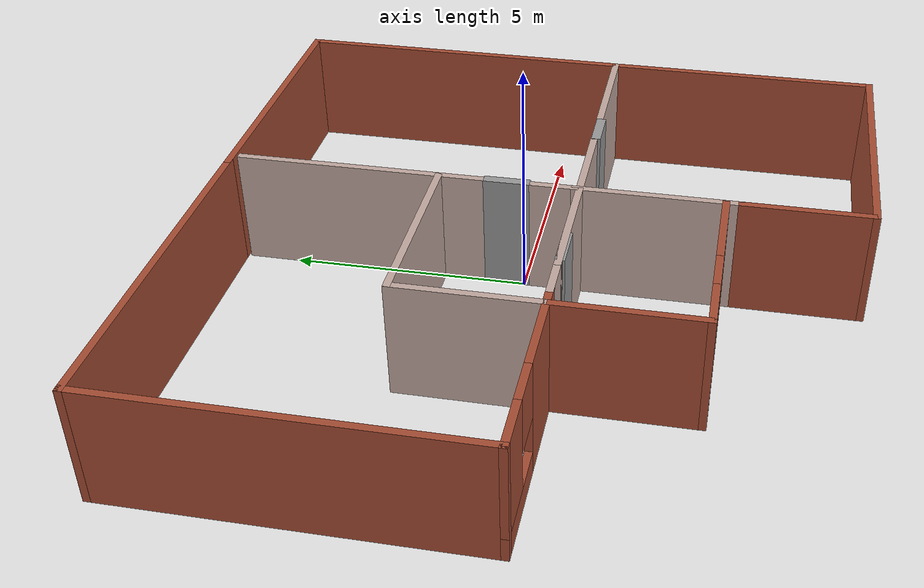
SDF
<?xml version='1.0'?>
<sdf version='1.6'>
  <model name='apt'>
    <pose frame=''>-0.93303 -0.379963 0 0 -0 0</pose>
    <link name='Door_1'>
      <collision name='Door_1_Collision'>
        <geometry>
          <box>
            <size>0.943 0.2 2.5</size>
          </box>
        </geometry>
        <pose frame=''>0 0 1.25 0 -0 0</pose>
      </collision>
      <visual name='Door_1_Visual'>
        <pose frame=''>0 0 1.25 0 -0 0</pose>
        <geometry>
          <box>
            <size>0.943 0.2 2.5</size>
          </box>
        </geometry>
        <material>
          <script>
            <uri>file://media/materials/scripts/gazebo.material</uri>
            <name>Gazebo/Grey</name>
          </script>
        </material>
      </visual>
      <pose frame=''>-1.09634 -0.773169 0 0 -0 0</pose>
    </link>
    <link name='Door_2'>
      <collision name='Door_2_Collision'>
        <geometry>
          <box>
            <size>0.964 0.2 2.5</size>
          </box>
        </geometry>
        <pose frame=''>0 0 1.25 0 -0 0</pose>
      </collision>
      <visual name='Door_2_Visual'>
        <pose frame=''>0 0 1.25 0 -0 0</pose>
        <geometry>
          <box>
            <size>0.964 0.2 2.5</size>
          </box>
        </geometry>
        <material>
          <script>
            <uri>file://media/materials/scripts/gazebo.material</uri>
            <name>Gazebo/Grey</name>
          </script>
        </material>
      </visual>
      <pose frame=''>1.02356 0.746573 0 0 -0 1.57684</pose>
    </link>
    <link name='Door_3'>
      <collision name='Door_3_Collision'>
        <geometry>
          <box>
            <size>0.891 0.2 2.5</size>
          </box>
        </geometry>
        <pose frame=''>0 0 1.25 0 -0 0</pose>
      </collision>
      <visual name='Door_3_Visual'>
        <pose frame=''>0 0 1.25 0 -0 0</pose>
        <geometry>
          <box>
            <size>0.891 0.2 2.5</size>
          </box>
        </geometry>
        <material>
          <script>
            <uri>file://media/materials/scripts/gazebo.material</uri>
            <name>Gazebo/Grey</name>
          </script>
        </material>
      </visual>
      <pose frame=''>3.48071 -0.785169 0 0 -0 0</pose>
    </link>
    <link name='Wall_10'>
      <collision name='Wall_10_Collision'>
        <geometry>
          <box>
            <size>6 0.15 2.5</size>
          </box>
        </geometry>
        <pose frame=''>0 0 1.25 0 -0 0</pose>
      </collision>
      <visual name='Wall_10_Visual'>
        <pose frame=''>0 0 1.25 0 -0 0</pose>
        <geometry>
          <box>
            <size>6 0.15 2.5</size>
          </box>
        </geometry>
        <material>
          <script>
            <uri>file://media/materials/scripts/gazebo.material</uri>
            <name>Gazebo/Bricks</name>
          </script>
          <ambient>1 1 1 1</ambient>
        </material>
        <meta>
          <layer>0</layer>
        </meta>
      </visual>
      <pose frame=''>3.67497 6.60004 0 0 -0 0</pose>
    </link>
    <link name='Wall_11'>
      <collision name='Wall_11_Collision'>
        <geometry>
          <box>
            <size>7.5 0.15 2.5</size>
          </box>
        </geometry>
        <pose frame=''>0 0 1.25 0 -0 0</pose>
      </collision>
      <visual name='Wall_11_Visual'>
        <pose frame=''>0 0 1.25 0 -0 0</pose>
        <geometry>
          <box>
            <size>7.5 0.15 2.5</size>
          </box>
        </geometry>
        <material>
          <script>
            <uri>file://media/materials/scripts/gazebo.material</uri>
            <name>Gazebo/Bricks</name>
          </script>
          <ambient>1 1 1 1</ambient>
        </material>
        <meta>
          <layer>0</layer>
        </meta>
      </visual>
      <pose frame=''>6.59997 2.92504 0 0 0 -1.5708</pose>
    </link>
    <link name='Wall_12'>
      <collision name='Wall_12_Collision'>
        <geometry>
          <box>
            <size>6 0.15 2.5</size>
          </box>
        </geometry>
        <pose frame=''>0 0 1.25 0 -0 0</pose>
      </collision>
      <visual name='Wall_12_Visual'>
        <pose frame=''>0 0 1.25 0 -0 0</pose>
        <geometry>
          <box>
            <size>6 0.15 2.5</size>
          </box>
        </geometry>
        <material>
          <script>
            <uri>file://media/materials/scripts/gazebo.material</uri>
            <name>Gazebo/Bricks</name>
          </script>
          <ambient>1 1 1 1</ambient>
        </material>
        <meta>
          <layer>0</layer>
        </meta>
      </visual>
      <pose frame=''>6.59997 -3.67496 0 0 0 -1.5708</pose>
    </link>
    <link name='Wall_13'>
      <collision name='Wall_13_Collision'>
        <geometry>
          <box>
            <size>5.75 0.15 2.5</size>
          </box>
        </geometry>
        <pose frame=''>0 0 1.25 0 -0 0</pose>
      </collision>
      <visual name='Wall_13_Visual'>
        <pose frame=''>0 0 1.25 0 -0 0</pose>
        <geometry>
          <box>
            <size>5.75 0.15 2.5</size>
          </box>
        </geometry>
        <material>
          <script>
            <uri>file://media/materials/scripts/gazebo.material</uri>
            <name>Gazebo/Bricks</name>
          </script>
          <ambient>1 1 1 1</ambient>
        </material>
        <meta>
          <layer>0</layer>
        </meta>
      </visual>
      <pose frame=''>3.8 -6.6 0 0 0 -3.14158</pose>
    </link>
    <link name='Wall_14'>
      <collision name='Wall_14_Collision'>
        <geometry>
          <box>
            <size>2.75 0.15 2.5</size>
          </box>
        </geometry>
        <pose frame=''>0 0 1.25 0 -0 0</pose>
      </collision>
      <visual name='Wall_14_Visual'>
        <pose frame=''>0 0 1.25 0 -0 0</pose>
        <geometry>
          <box>
            <size>2.75 0.15 2.5</size>
          </box>
        </geometry>
        <material>
          <script>
            <uri>file://media/materials/scripts/gazebo.material</uri>
            <name>Gazebo/Bricks</name>
          </script>
          <ambient>1 1 1 1</ambient>
        </material>
        <meta>
          <layer>0</layer>
        </meta>
      </visual>
      <pose frame=''>1.00003 -5.30004 0 0 -0 1.5708</pose>
    </link>
    <link name='Wall_24'>
      <collision name='Wall_24_Collision'>
        <geometry>
          <box>
            <size>3.5 0.15 2.5</size>
          </box>
        </geometry>
        <pose frame=''>0 0 1.25 0 -0 0</pose>
      </collision>
      <visual name='Wall_24_Visual'>
        <pose frame=''>0 0 1.25 0 -0 0</pose>
        <geometry>
          <box>
            <size>3.5 0.15 2.5</size>
          </box>
        </geometry>
        <material>
          <script>
            <uri>file://media/materials/scripts/gazebo.material</uri>
            <name>Gazebo/Grey</name>
          </script>
          <ambient>0.760784 0.662745 0.627451 1</ambient>
        </material>
        <meta>
          <layer>0</layer>
        </meta>
      </visual>
      <pose frame=''>1.00003 -2.32504 0 0 -0 1.5708</pose>
    </link>
    <link name='Wall_25'>
      <collision name='Wall_25_Collision'>
        <geometry>
          <box>
            <size>1 0.15 2.5</size>
          </box>
        </geometry>
        <pose frame=''>0 0 1.25 0 -0 0</pose>
      </collision>
      <visual name='Wall_25_Visual'>
        <pose frame=''>0 0 1.25 0 -0 0</pose>
        <geometry>
          <box>
            <size>1 0.15 2.5</size>
          </box>
        </geometry>
        <material>
          <script>
            <uri>file://media/materials/scripts/gazebo.material</uri>
            <name>Gazebo/Grey</name>
          </script>
          <ambient>0.760784 0.662745 0.627451 1</ambient>
        </material>
        <meta>
          <layer>0</layer>
        </meta>
      </visual>
      <pose frame=''>1.00003 -0.225037 0 0 -0 1.5708</pose>
    </link>
    <link name='Wall_27'>
      <collision name='Wall_27_Collision'>
        <geometry>
          <box>
            <size>5.25 0.15 2.5</size>
          </box>
        </geometry>
        <pose frame=''>0 0 1.25 0 -0 0</pose>
      </collision>
      <visual name='Wall_27_Visual'>
        <pose frame=''>0 0 1.25 0 -0 0</pose>
        <geometry>
          <box>
            <size>5.25 0.15 2.5</size>
          </box>
        </geometry>
        <material>
          <script>
            <uri>file://media/materials/scripts/gazebo.material</uri>
            <name>Gazebo/Grey</name>
          </script>
          <ambient>0.760784 0.662745 0.627451 1</ambient>
        </material>
        <meta>
          <layer>0</layer>
        </meta>
      </visual>
      <pose frame=''>1.00003 3.84996 0 0 -0 1.5708</pose>
    </link>
    <link name='Wall_29'>
      <collision name='Wall_29_Collision'>
        <geometry>
          <box>
            <size>1 0.15 2.5</size>
          </box>
        </geometry>
        <pose frame=''>0 0 1.25 0 -0 0</pose>
      </collision>
      <visual name='Wall_29_Visual'>
        <pose frame=''>0 0 1.25 0 -0 0</pose>
        <geometry>
          <box>
            <size>1 0.15 2.5</size>
          </box>
        </geometry>
        <material>
          <script>
            <uri>file://media/materials/scripts/gazebo.material</uri>
            <name>Gazebo/Grey</name>
          </script>
          <ambient>0.760784 0.662745 0.627451 1</ambient>
        </material>
        <meta>
          <layer>0</layer>
        </meta>
      </visual>
      <pose frame=''>-2.07497 -0.750037 0 0 -0 0</pose>
    </link>
    <link name='Wall_45'>
      <collision name='Wall_45_Collision'>
        <geometry>
          <box>
            <size>4 0.15 2.5</size>
          </box>
        </geometry>
        <pose frame=''>0 0 1.25 0 -0 0</pose>
      </collision>
      <visual name='Wall_45_Visual'>
        <pose frame=''>0 0 1.25 0 -0 0</pose>
        <geometry>
          <box>
            <size>4 0.15 2.5</size>
          </box>
        </geometry>
        <material>
          <script>
            <uri>file://media/materials/scripts/gazebo.material</uri>
            <name>Gazebo/Grey</name>
          </script>
          <ambient>0.760784 0.662745 0.627451 1</ambient>
        </material>
        <meta>
          <layer>0</layer>
        </meta>
      </visual>
      <pose frame=''>-0.94997 2.16696 0 0 -0 0</pose>
    </link>
    <link name='Wall_51'>
      <pose frame=''>-0.94997 -3.68304 0 0 -0 0</pose>
      <visual name='Wall_51_Visual_0'>
        <pose frame=''>-1.41352 0 1.25 0 -0 0</pose>
        <geometry>
          <box>
            <size>1.17296 0.15 2.5</size>
          </box>
        </geometry>
        <material>
          <script>
            <uri>file://media/materials/scripts/gazebo.material</uri>
            <name>Gazebo/Bricks</name>
          </script>
          <ambient>1 1 1 1</ambient>
        </material>
        <meta>
          <layer>0</layer>
        </meta>
      </visual>
      <collision name='Wall_51_Collision_0'>
        <geometry>
          <box>
            <size>1.17296 0.15 2.5</size>
          </box>
        </geometry>
        <pose frame=''>-1.41352 0 1.25 0 -0 0</pose>
      </collision>
      <visual name='Wall_51_Visual_1'>
        <pose frame=''>0.586479 0 0.25 0 -0 0</pose>
        <geometry>
          <box>
            <size>2.82704 0.15 0.5</size>
          </box>
        </geometry>
        <material>
          <script>
            <uri>file://media/materials/scripts/gazebo.material</uri>
            <name>Gazebo/Bricks</name>
          </script>
          <ambient>1 1 1 1</ambient>
        </material>
        <meta>
          <layer>0</layer>
        </meta>
      </visual>
      <collision name='Wall_51_Collision_1'>
        <geometry>
          <box>
            <size>2.82704 0.15 0.5</size>
          </box>
        </geometry>
        <pose frame=''>0.586479 0 0.25 0 -0 0</pose>
      </collision>
      <visual name='Wall_51_Visual_2'>
        <pose frame=''>1.03836 0 1.5 0 -0 0</pose>
        <geometry>
          <box>
            <size>1.92328 0.15 2</size>
          </box>
        </geometry>
        <material>
          <script>
            <uri>file://media/materials/scripts/gazebo.material</uri>
            <name>Gazebo/Bricks</name>
          </script>
          <ambient>1 1 1 1</ambient>
        </material>
        <meta>
          <layer>0</layer>
        </meta>
      </visual>
      <collision name='Wall_51_Collision_2'>
        <geometry>
          <box>
            <size>1.92328 0.15 2</size>
          </box>
        </geometry>
        <pose frame=''>1.03836 0 1.5 0 -0 0</pose>
      </collision>
      <visual name='Wall_51_Visual_3'>
        <pose frame=''>-0.375162 0 1.9 0 -0 0</pose>
        <geometry>
          <box>
            <size>0.903759 0.15 1.2</size>
          </box>
        </geometry>
        <material>
          <script>
            <uri>file://media/materials/scripts/gazebo.material</uri>
            <name>Gazebo/Bricks</name>
          </script>
          <ambient>1 1 1 1</ambient>
        </material>
        <meta>
          <layer>0</layer>
        </meta>
      </visual>
      <collision name='Wall_51_Collision_3'>
        <geometry>
          <box>
            <size>0.903759 0.15 1.2</size>
          </box>
        </geometry>
        <pose frame=''>-0.375162 0 1.9 0 -0 0</pose>
      </collision>
    </link>
    <link name='Wall_57'>
      <collision name='Wall_57_Collision'>
        <geometry>
          <box>
            <size>4.75 0.15 2.5</size>
          </box>
        </geometry>
        <pose frame=''>0 0 1.25 0 -0 0</pose>
      </collision>
      <visual name='Wall_57_Visual'>
        <pose frame=''>0 0 1.25 0 -0 0</pose>
        <geometry>
          <box>
            <size>4.75 0.15 2.5</size>
          </box>
        </geometry>
        <material>
          <script>
            <uri>file://media/materials/scripts/gazebo.material</uri>
            <name>Gazebo/Grey</name>
          </script>
          <ambient>0.760784 0.662745 0.627451 1</ambient>
        </material>
        <meta>
          <layer>0</layer>
        </meta>
      </visual>
      <pose frame=''>0.65 -0.75 0 0 -0 1.6e-05</pose>
    </link>
    <link name='Wall_59'>
      <collision name='Wall_59_Collision'>
        <geometry>
          <box>
            <size>2.75 0.15 2.5</size>
          </box>
        </geometry>
        <pose frame=''>0 0 1.25 0 -0 0</pose>
      </collision>
      <visual name='Wall_59_Visual'>
        <pose frame=''>0 0 1.25 0 -0 0</pose>
        <geometry>
          <box>
            <size>2.75 0.15 2.5</size>
          </box>
        </geometry>
        <material>
          <script>
            <uri>file://media/materials/scripts/gazebo.material</uri>
            <name>Gazebo/Grey</name>
          </script>
          <ambient>0.760784 0.662745 0.627451 1</ambient>
        </material>
        <meta>
          <layer>0</layer>
        </meta>
      </visual>
      <pose frame=''>5.29997 -0.749963 0 0 -0 0</pose>
    </link>
    <link name='Wall_61'>
      <collision name='Wall_61_Collision'>
        <geometry>
          <box>
            <size>3 0.15 2.5</size>
          </box>
        </geometry>
        <pose frame=''>0 0 1.25 0 -0 0</pose>
      </collision>
      <visual name='Wall_61_Visual'>
        <pose frame=''>0 0 1.25 0 -0 0</pose>
        <geometry>
          <box>
            <size>3 0.15 2.5</size>
          </box>
        </geometry>
        <material>
          <script>
            <uri>file://media/materials/scripts/gazebo.material</uri>
            <name>Gazebo/Bricks</name>
          </script>
          <ambient>1 1 1 1</ambient>
        </material>
        <meta>
          <layer>0</layer>
        </meta>
      </visual>
      <pose frame=''>-2.87497 -2.25804 0 0 -0 1.5708</pose>
    </link>
    <link name='Wall_62'>
      <collision name='Wall_62_Collision'>
        <geometry>
          <box>
            <size>3.15 0.15 2.5</size>
          </box>
        </geometry>
        <pose frame=''>0 0 1.25 0 -0 0</pose>
      </collision>
      <visual name='Wall_62_Visual'>
        <pose frame=''>0 0 1.25 0 -0 0</pose>
        <geometry>
          <box>
            <size>3.15 0.15 2.5</size>
          </box>
        </geometry>
        <material>
          <script>
            <uri>file://media/materials/scripts/gazebo.material</uri>
            <name>Gazebo/Grey</name>
          </script>
          <ambient>0.760784 0.662745 0.627451 1</ambient>
        </material>
        <meta>
          <layer>0</layer>
        </meta>
      </visual>
      <pose frame=''>-2.87497 0.666963 0 0 -0 1.5708</pose>
    </link>
    <link name='Wall_7'>
      <pose frame=''>-4.54997 -0.750037 0 0 -0 3.14159</pose>
      <visual name='Wall_7_Visual_0'>
        <pose frame=''>-1.0426 0 1.25 0 -0 0</pose>
        <geometry>
          <box>
            <size>2.1648 0.15 2.5</size>
          </box>
        </geometry>
        <material>
          <script>
            <uri>file://media/materials/scripts/gazebo.material</uri>
            <name>Gazebo/Bricks</name>
          </script>
          <ambient>1 1 1 1</ambient>
        </material>
        <meta>
          <layer>0</layer>
        </meta>
      </visual>
      <collision name='Wall_7_Collision_0'>
        <geometry>
          <box>
            <size>2.1648 0.15 2.5</size>
          </box>
        </geometry>
        <pose frame=''>-1.0426 0 1.25 0 -0 0</pose>
      </collision>
      <visual name='Wall_7_Visual_1'>
        <pose frame=''>1.0824 0 0.25 0 -0 0</pose>
        <geometry>
          <box>
            <size>2.0852 0.15 0.5</size>
          </box>
        </geometry>
        <material>
          <script>
            <uri>file://media/materials/scripts/gazebo.material</uri>
            <name>Gazebo/Bricks</name>
          </script>
          <ambient>1 1 1 1</ambient>
        </material>
        <meta>
          <layer>0</layer>
        </meta>
      </visual>
      <collision name='Wall_7_Collision_1'>
        <geometry>
          <box>
            <size>2.0852 0.15 0.5</size>
          </box>
        </geometry>
        <pose frame=''>1.0824 0 0.25 0 -0 0</pose>
      </collision>
      <visual name='Wall_7_Visual_2'>
        <pose frame=''>1.54725 0 1.5 0 -0 0</pose>
        <geometry>
          <box>
            <size>1.15551 0.15 2</size>
          </box>
        </geometry>
        <material>
          <script>
            <uri>file://media/materials/scripts/gazebo.material</uri>
            <name>Gazebo/Bricks</name>
          </script>
          <ambient>1 1 1 1</ambient>
        </material>
        <meta>
          <layer>0</layer>
        </meta>
      </visual>
      <collision name='Wall_7_Collision_2'>
        <geometry>
          <box>
            <size>1.15551 0.15 2</size>
          </box>
        </geometry>
        <pose frame=''>1.54725 0 1.5 0 -0 0</pose>
      </collision>
      <visual name='Wall_7_Visual_3'>
        <pose frame=''>0.504646 0 1.9 0 -0 0</pose>
        <geometry>
          <box>
            <size>0.929698 0.15 1.2</size>
          </box>
        </geometry>
        <material>
          <script>
            <uri>file://media/materials/scripts/gazebo.material</uri>
            <name>Gazebo/Bricks</name>
          </script>
          <ambient>1 1 1 1</ambient>
        </material>
        <meta>
          <layer>0</layer>
        </meta>
      </visual>
      <collision name='Wall_7_Collision_3'>
        <geometry>
          <box>
            <size>0.929698 0.15 1.2</size>
          </box>
        </geometry>
        <pose frame=''>0.504646 0 1.9 0 -0 0</pose>
      </collision>
    </link>
    <link name='Wall_8'>
      <collision name='Wall_8_Collision'>
        <geometry>
          <box>
            <size>7.5 0.15 2.5</size>
          </box>
        </geometry>
        <pose frame=''>0 0 1.25 0 -0 0</pose>
      </collision>
      <visual name='Wall_8_Visual'>
        <pose frame=''>0 0 1.25 0 -0 0</pose>
        <geometry>
          <box>
            <size>7.5 0.15 2.5</size>
          </box>
        </geometry>
        <material>
          <script>
            <uri>file://media/materials/scripts/gazebo.material</uri>
            <name>Gazebo/Bricks</name>
          </script>
          <ambient>1 1 1 1</ambient>
        </material>
        <meta>
          <layer>0</layer>
        </meta>
      </visual>
      <pose frame=''>-6.59997 2.92496 0 0 -0 1.5708</pose>
    </link>
    <link name='Wall_9'>
      <collision name='Wall_9_Collision'>
        <geometry>
          <box>
            <size>7.5 0.15 2.5</size>
          </box>
        </geometry>
        <pose frame=''>0 0 1.25 0 -0 0</pose>
      </collision>
      <visual name='Wall_9_Visual'>
        <pose frame=''>0 0 1.25 0 -0 0</pose>
        <geometry>
          <box>
            <size>7.5 0.15 2.5</size>
          </box>
        </geometry>
        <material>
          <script>
            <uri>file://media/materials/scripts/gazebo.material</uri>
            <name>Gazebo/Bricks</name>
          </script>
          <ambient>1 1 1 1</ambient>
        </material>
        <meta>
          <layer>0</layer>
        </meta>
      </visual>
      <pose frame=''>-2.925 6.6 0 0 -0 1e-05</pose>
    </link>
    <static>1</static>
  </model>
</sdf>
